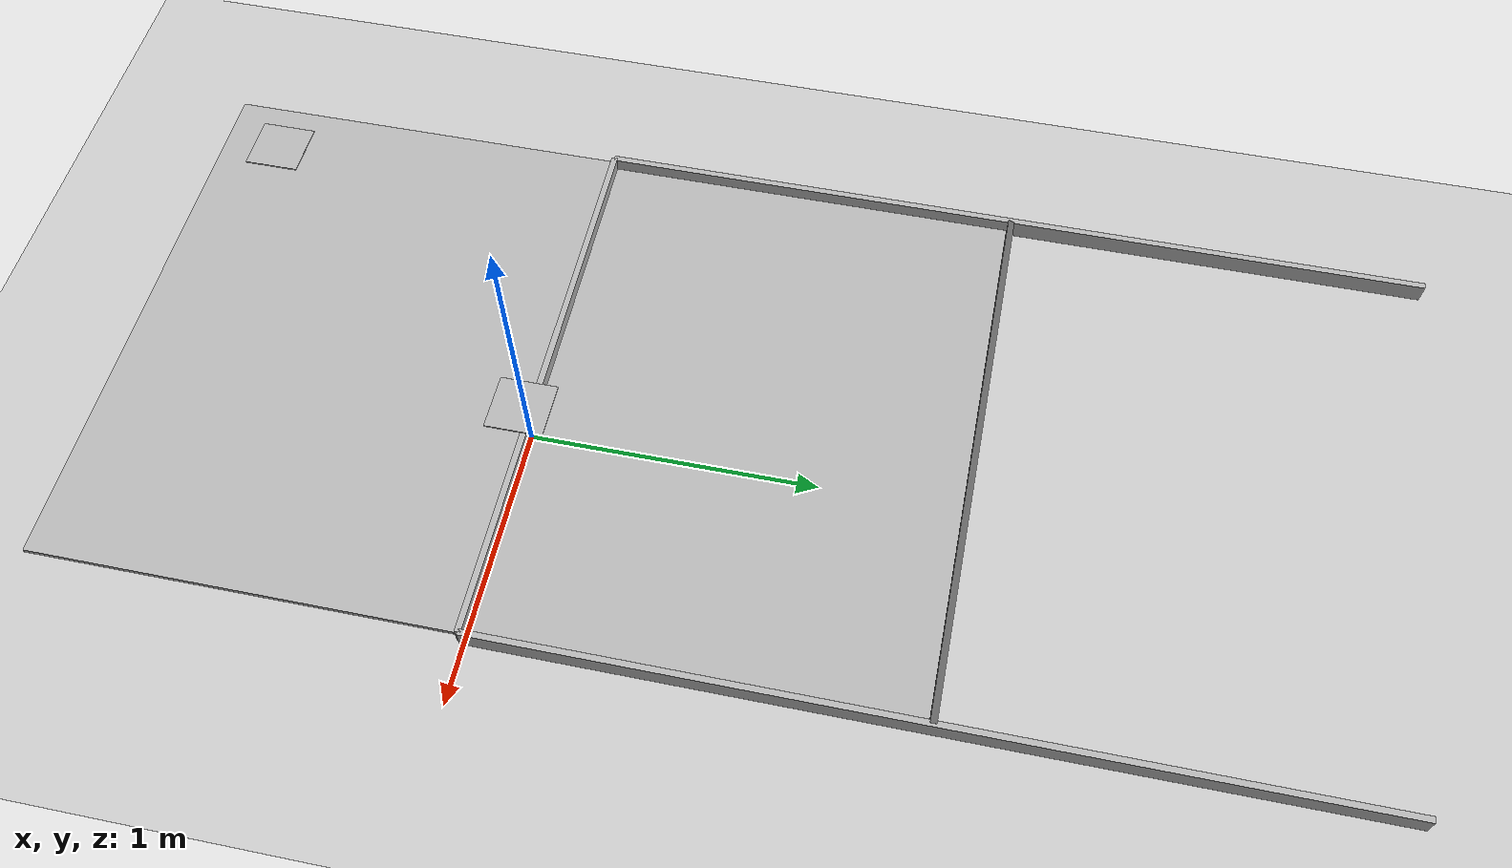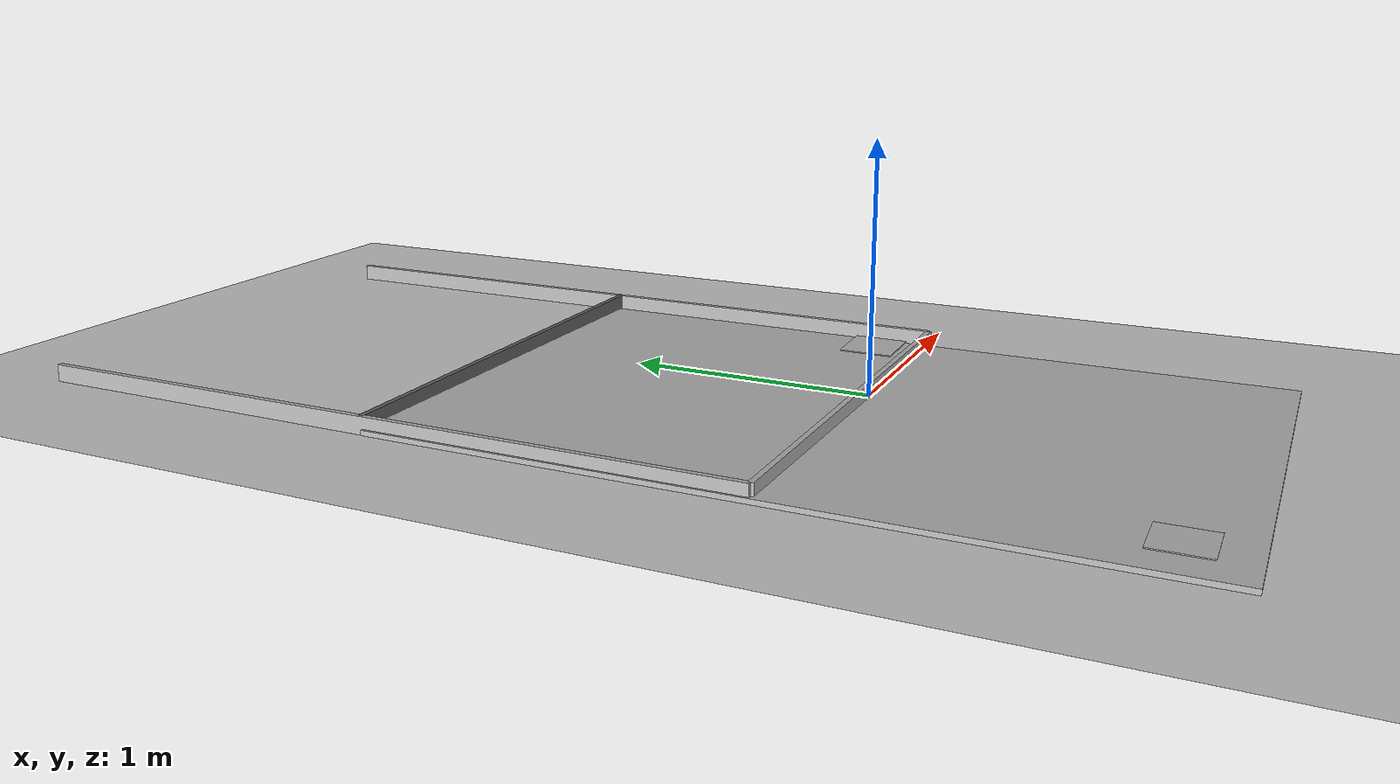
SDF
<sdf version="1.7">
 <world name="default">
  <light name="sun" type="directional">
   <pose>0 0 10 0 -0 0</pose>
   <diffuse>0.8 0.8 0.8 1</diffuse>
   <specular>0.2 0.2 0.2 1</specular>
   <attenuation>
    <range>1000</range>
    <constant>0.9</constant>
    <linear>0.01</linear>
    <quadratic>0.001</quadratic>
   </attenuation>
   <direction>-0.5 0.1 -0.9</direction>
   <spot><inner_angle>0</inner_angle><outer_angle>0</outer_angle><falloff>0</falloff></spot>
  </light>
  <model name="ground_plane">
   <static>1</static>
   <link name="link">
    <collision name="collision">
     <geometry><plane><normal>0 0 1</normal><size>100 100</size></plane></geometry>
     <surface><friction><ode><mu>100</mu><mu2>50</mu2></ode></friction></surface>
    </collision>
    <visual name="visual">
     <cast_shadows>0</cast_shadows>
     <geometry><plane><normal>0 0 1</normal><size>100 100</size></plane></geometry>
     <material>
      <script><uri>file://media/materials/scripts/gazebo.material</uri><name>Gazebo/Grey</name></script>
     </material>
    </visual>
   </link>
  </model>
  <gravity>0 0 -9.8</gravity>
  <magnetic_field>6e-06 2.3e-05 -4.2e-05</magnetic_field>
  <atmosphere type="adiabatic"/>
  <physics type="ode">
   <max_step_size>0.001</max_step_size>
   <real_time_factor>1</real_time_factor>
   <real_time_update_rate>1000</real_time_update_rate>
  </physics>
  <scene><ambient>0.4 0.4 0.4 1</ambient><background>0.7 0.7 0.7 1</background><shadows>1</shadows></scene>
  <spherical_coordinates>
   <surface_model>EARTH_WGS84</surface_model>
   <latitude_deg>0</latitude_deg>
   <longitude_deg>0</longitude_deg>
   <elevation>0</elevation>
   <heading_deg>0</heading_deg>
  </spherical_coordinates>
  <model name="Marker2">
   <static>1</static>
   <link name="link">
    <visual name="visual">
     <geometry><mesh><uri>model://marker2/meshes/Marker2.dae</uri><scale>0.4 0.4 0.4</scale></mesh></geometry>
    </visual>
   </link>
   <pose>-0.943297 -1.28686 0.045419 3.14159 -1.55803 3.14159</pose>
  </model>
  <model name="eurobot_cositas">
   <static>1</static>
   <link name="wall_pos_x">
    <pose>0.01 0 0.035 0 -0 0</pose>
    <collision name="col"><geometry><box><size>0.022 2 0.07</size></box></geometry></collision>
    <visual name="vis">
     <geometry><box><size>0.022 2 0.07</size></box></geometry>
     <material><ambient>0.2 0.2 0.2 1</ambient><diffuse>0.4 0.4 0.4 1</diffuse></material>
    </visual>
   </link>
   <link name="wall_neg_x">
    <pose>-1.5 0 0.035 0 -0 0</pose>
    <collision name="col"><geometry><box><size>0.022 2 0.07</size></box></geometry></collision>
    <visual name="vis"><geometry><box><size>0.022 2 0.07</size></box></geometry></visual>
   </link>
   <link name="wall_pos_y">
    <pose>0 1 0.035 0 -0 0</pose>
    <collision name="col"><geometry><box><size>3 0.022 0.07</size></box></geometry></collision>
    <visual name="vis"><geometry><box><size>3 0.022 0.07</size></box></geometry></visual>
   </link>
   <link name="wall_neg_y">
    <pose>0 -1 0.035 0 -0 0</pose>
    <collision name="col"><geometry><box><size>3 0.022 0.07</size></box></geometry></collision>
    <visual name="vis"><geometry><box><size>3 0.022 0.07</size></box></geometry></visual>
   </link>
   <pose>-0.219804 1.48774 0 0 -0 1.56945</pose>
  </model>
  <model name="Marker3">
   <static>1</static>
   <link name="link">
    <visual name="visual">
     <geometry><mesh><uri>model://marker3/meshes/Marker3.dae</uri><scale>0.4 0.4 0.4</scale></mesh></geometry>
    </visual>
   </link>
   <pose>0.105285 -0.009649 0.203751 3.14159 -1.5397 3.14159</pose>
  </model>
  <model name="Marker10_0">
   <static>1</static>
   <link name="link">
    <visual name="visual">
     <geometry><mesh><uri>model://marker10/meshes/Marker10.dae</uri><scale>0.01 1.5 1</scale></mesh></geometry>
    </visual>
   </link>
   <pose>0.758032 -0.013436 0 0 -1.56424 0</pose>
  </model>
 </world>
</sdf>
